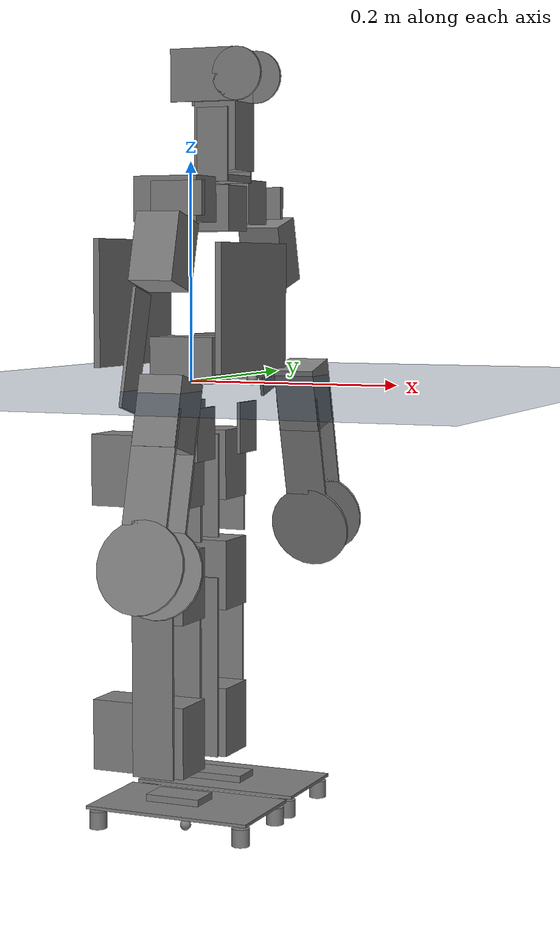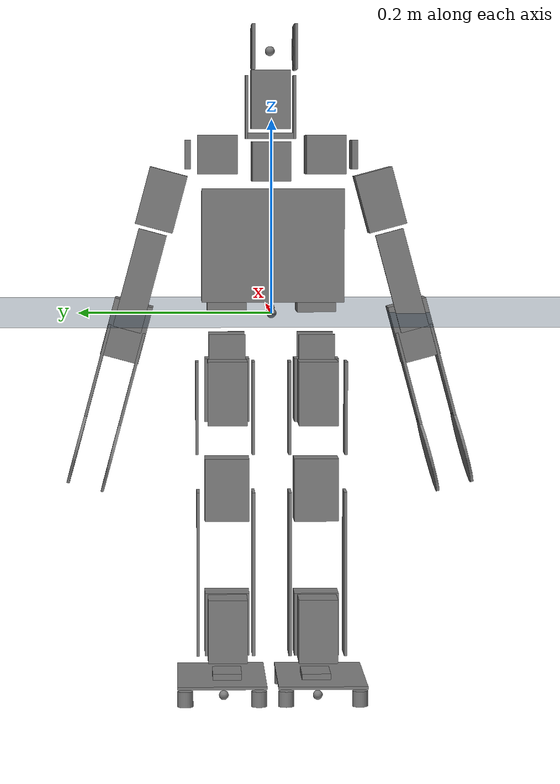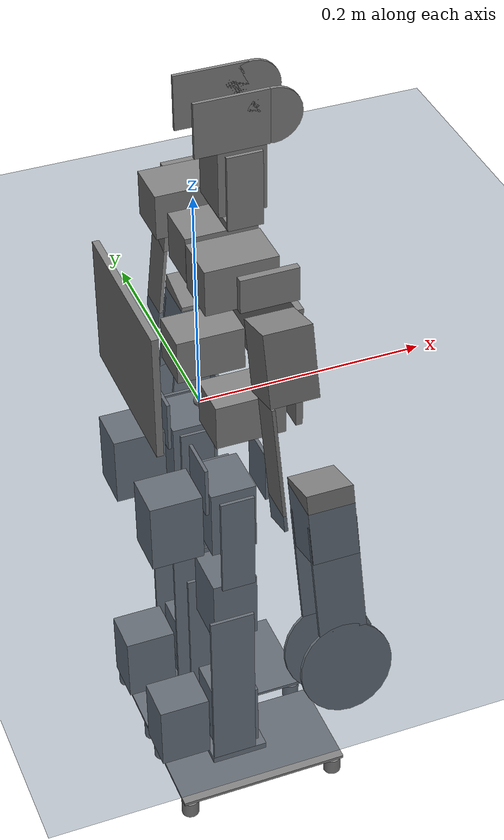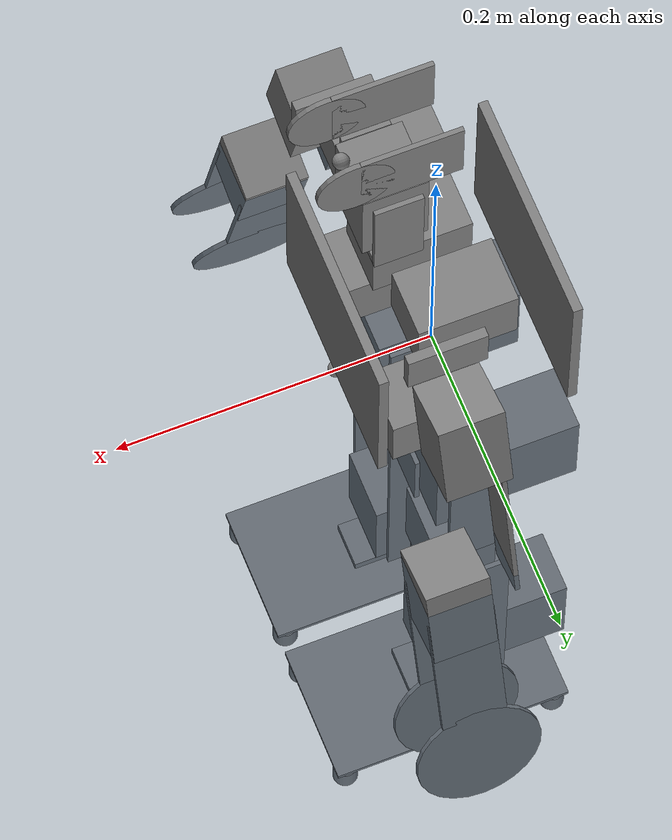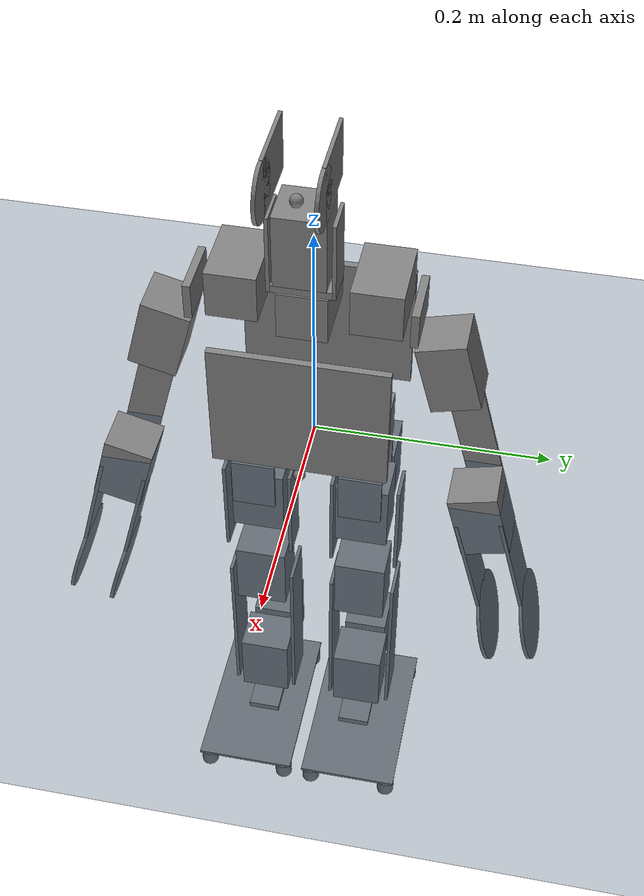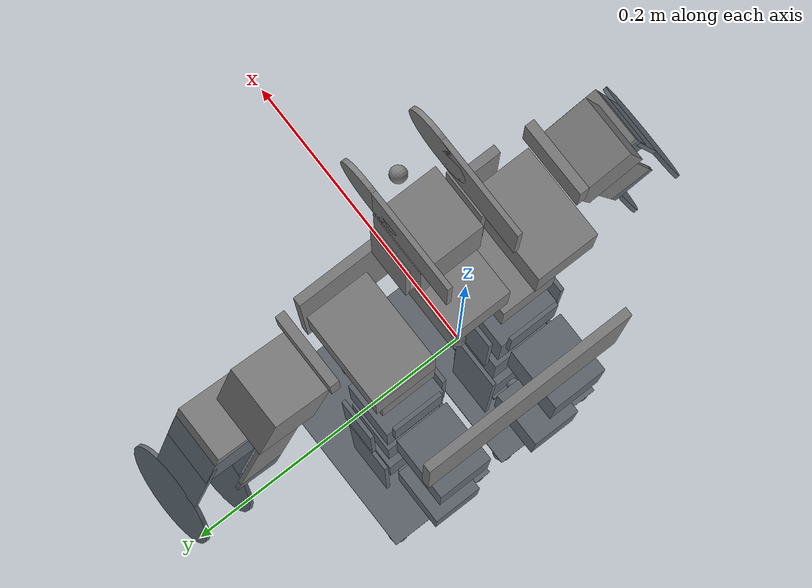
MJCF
<mujoco model="rhoban">
	<include file="sigmaban.xml"/>

	<visual>
		<headlight diffuse="0.6 0.6 0.6" ambient="0.3 0.3 0.3" specular="0 0 0"/>
		<rgba haze="0.15 0.25 0.35 1"/>
		<global azimuth="160" elevation="-20"/>
	</visual>

	<asset>
		<texture type="skybox" builtin="gradient" rgb1="0.3 0.5 0.7" rgb2="0 0 0" width="512" height="3072"/>
		<texture type="2d" name="groundplane" builtin="checker" mark="edge" rgb1="0.2 0.3 0.4" rgb2="0.1 0.2 0.3"
			markrgb="0.8 0.8 0.8" width="300" height="300"/>
		<material name="groundplane" texture="groundplane" texuniform="true" texrepeat="5 5" reflectance="0.2"/>
	</asset>

	<worldbody>
		<light pos="0 0 3.5" dir="0 0 -1" directional="true"/>
		<geom name="floor" size="0 0 0.05" pos="0 0 0" type="plane" material="groundplane"/>
	</worldbody>
</mujoco>

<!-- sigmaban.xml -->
<mujoco model="sigmaban">
    <compiler angle="radian" />

    <!-- KP=12 -->
    <default>
        <default class="mx106">
            <position kp="21" forcerange="-8 8" />
            <joint damping="1.7" armature="0.025" frictionloss="0.10" />
        </default>
        <default class="mx64">
            <position kp="12.5" forcerange="-5 5" />
            <joint damping="0.66" armature="0.012" frictionloss="0.09" />
        </default>
    </default>

    <!-- KP=18 -->

    <!-- KP=24 -->

    <!-- KP=32 (base pour la règle de 3)-->

    <option noslip_iterations="1"></option>

    <worldbody>
        <body name="torso_2023">
            <freejoint name="root" />
            <site name="torso" />
            <inertial pos="0.00156484 6.73262e-05 0.070745"
                quat="0.99676 -0.0200847 -0.0149022 0.0764468" mass="3.27516"
                diaginertia="0.0199727 0.0188364 0.0126333" />
            <geom size="0.0725 0.057796 0.003"
                pos="0.0603892 1.47174e-07 0.0680823" quat="0.5 -0.5 0.5 -0.5" type="box" />
            <geom
                size="0.0201 0.03055 0.0205" pos="0.0209392 0.0464001 0.022"
                quat="0 0.707107 -0.707107 0" type="box" />
            <geom size="0.0201 0.03055 0.0205"
                pos="0.0209392 -0.0463999 0.022" quat="0 0.707107 -0.707107 0" type="box" />
            <geom
                size="0.0201 0.03055 0.0205" pos="0.0158392 1.47174e-07 0.157"
                quat="0.707107 0 0 -0.707107" type="box" />
            <geom size="0.0725 0.057796 0.003"
                pos="-0.0596108 1.47174e-07 0.0719177" quat="0.5 0.5 0.5 0.5" type="box" />
            <geom
                size="0.0201 0.03055 0.0205" pos="0.0108392 0.0560001 0.164"
                quat="0.5 -0.5 -0.5 -0.5" type="box" />
            <geom size="0.0201 0.03055 0.0205"
                pos="0.0108392 -0.0559999 0.164" quat="0.5 0.5 0.5 -0.5" type="box" />
            <body
                name="head_base" pos="0.0333892 1.47174e-07 0.183">
                <inertial pos="0 0 0" mass="1e-09" diaginertia="0 0 0" />
            </body>
            <site name="trunk" pos="0.0608892 1.47174e-07 0.0025" />
            <body
                name="u_neck" pos="0.0333892 1.47174e-07 0.1805" quat="0.707107 0 0 -0.707107">
                <inertial pos="0 0 0.0206334" quat="0.707107 0 0 0.707107" mass="0.0544799"
                    diaginertia="5.16952e-05 3.05787e-05 2.98525e-05" />
                <joint class="mx64" name="head_yaw" pos="0 0 0" axis="0 0 1" />
                <geom size="0.015 0.032901 0.0015" pos="0.025 0 0.032901" quat="0.5 0.5 -0.5 -0.5"
                    type="box" />
                <geom size="0.015 0.032901 0.0015" pos="-0.025 0 0.032901" quat="0.5 0.5 0.5 0.5"
                    type="box" />
                <geom size="0.0245 0.015 0.003125" pos="0 0 0.003125" quat="0 1 0 0" type="box" />
                <body name="head_2023__field_of_view_false" pos="-0.0235 0 0.058302"
                    quat="0.5 0.5 -0.5 -0.5">
                    <inertial pos="-0.000139837 0.00397747 -0.0233757"
                        quat="0.713826 0.697167 -0.0325639 0.0578699" mass="0.257265"
                        diaginertia="0.000251953 0.000245992 0.000105535" />
                    <joint class="mx64" name="head_pitch" pos="0 0 0" axis="0 0 1" />
                    <geom size="0.0235 0.0015" pos="-0.0238 0.0365 -0.005" quat="0 0 1 0"
                        type="cylinder" />
                    <geom size="0.0308 0.0235 0.0015" pos="0.01 0.0365 -0.005" quat="0 0 1 0"
                        type="box" />
                    <geom size="0.0235 0.0015" pos="-0.0238 0.0365 -0.049" quat="0 0 1 0"
                        type="cylinder" />
                    <geom size="0.0308 0.0235 0.0015" pos="0.01 0.0365 -0.049" quat="0 0 1 0"
                        type="box" />
                    <geom size="0.0201 0.03055 0.0205" pos="0 -0.01755 -0.0235" type="box" />
                    <site name="camera" pos="-0.024933 0.0335 -0.0235" quat="0 0.707107 0 -0.707107" />
                </body>
            </body>
            <body
                name="u_shoulder_2023" pos="0.0283892 0.0795001 0.164" quat="0.707107 -0.707107 0 0">
                <inertial pos="0 0.00364642 0.0214003" quat="0.534183 0.463302 0.534183 0.463302"
                    mass="0.0751043" diaginertia="5.70899e-05 4.53448e-05 3.35766e-05" />
                <joint class="mx64" name="left_shoulder_pitch" pos="0 0 0" axis="0 0 1" />
                <geom size="0.0245 0.015 0.003125" pos="0 0 0.007125" quat="0 -1 0 0" type="box" />
                <body name="left_humerus" pos="0.0235 0.03 0.03"
                    quat="0.092296 -0.701057 0.092296 -0.701057">
                    <inertial pos="0.000340637 -0.0522685 -0.0268822"
                        quat="0.6755 0.737155 -0.00965607 0.0144769" mass="0.243502"
                        diaginertia="0.0007708 0.000757172 7.90289e-05" />
                    <joint class="mx64" name="left_shoulder_roll" pos="0 0 0" axis="0 0 1" />
                    <geom size="0.0201 0.03055 0.0205" pos="0 -0.01755 -0.0235" type="box" />
                    <geom size="0.0525 0.015 0.0015" pos="0 -0.1045 -0.04"
                        quat="0 0.707107 -0.707107 0" type="box" />
                    <body name="radius_v2" pos="0.0235 -0.142 -0.0025" quat="0.707107 0 0.707107 0">
                        <inertial pos="7.98171e-05 -0.0556905 -0.0234333"
                            quat="0.516125 0.5144 -0.483923 0.484589" mass="0.256846"
                            diaginertia="0.000947096 0.000937203 0.000130591" />
                        <joint class="mx64" name="left_elbow" pos="0 0 0" axis="0 0 1" />
                        <geom size="0.04 0.0015" pos="0 -0.1496 -0.042"
                            quat="0.707107 0 0 -0.707107" type="cylinder" />
                        <geom size="0.0497756 0.0206 0.0015" pos="0 -0.0649756 -0.042"
                            quat="0.707107 0 0 -0.707107" type="box" />
                        <geom size="0.0201 0.03055 0.0205" pos="0 -0.01755 -0.0235" quat="1 0 0 0"
                            type="box" />
                        <geom size="0.04 0.0015" pos="0 -0.1496 -0.005"
                            quat="0.707107 0 0 -0.707107" type="cylinder" />
                        <geom size="0.0497756 0.0206 0.0015" pos="0 -0.0649756 -0.005"
                            quat="0.707107 0 0 -0.707107" type="box" />
                    </body>
                </body>
            </body>
            <body
                name="u_shoulder_2023_2" pos="0.0283892 -0.0794999 0.164"
                quat="0 0 -0.707107 -0.707107">
                <inertial pos="0 -0.00364642 -0.0214003" quat="0.534183 0.463302 0.534183 0.463302"
                    mass="0.0751043" diaginertia="5.70899e-05 4.53448e-05 3.35766e-05" />
                <joint class="mx64" name="right_shoulder_pitch" pos="0 0 0" axis="0 0 1" />
                <geom size="0.0245 0.015 0.003125" pos="0 0 -0.007125" type="box" />
                <body name="right_humerus" pos="-0.0235 -0.03 -0.03"
                    quat="0.701057 0.092296 -0.701057 -0.092296">
                    <inertial pos="-0.000172255 -0.0522685 -0.0268669"
                        quat="0.675487 0.736848 -0.0236007 0.014685" mass="0.243502"
                        diaginertia="0.000770875 0.000757172 7.90454e-05" />
                    <joint class="mx64" name="right_shoulder_roll" pos="0 0 0" axis="0 0 1"/>
                    <geom size="0.0525 0.015 0.0015" pos="0 -0.1045 -0.04"
                        quat="0 -0.707107 0.707107 0" type="box" />
                    <geom size="0.0201 0.03055 0.0205" pos="0 -0.01755 -0.0235" type="box" />
                    <body name="radius_v2_2" pos="-0.0235 -0.142 -0.0025"
                        quat="0 -0.707107 0 -0.707107">
                        <inertial pos="7.98171e-05 0.0556905 0.0234333"
                            quat="0.484589 0.483923 -0.5144 0.516125" mass="0.256846"
                            diaginertia="0.000947096 0.000937203 0.000130591" />
                        <joint class="mx64" name="right_elbow" pos="0 0 0" axis="0 0 1" />
                        <geom size="0.04 0.0015" pos="0 0.1496 0.005" quat="0 0.707107 0.707107 0"
                            type="cylinder" />
                        <geom size="0.0497756 0.0206 0.0015" pos="0 0.0649756 0.005"
                            quat="0 0.707107 0.707107 0" type="box" />
                        <geom size="0.04 0.0015" pos="0 0.1496 0.042" quat="0 0.707107 0.707107 0"
                            type="cylinder" />
                        <geom size="0.0497756 0.0206 0.0015" pos="0 0.0649756 0.042"
                            quat="0 0.707107 0.707107 0" type="box" />
                        <geom size="0.0201 0.03055 0.0205" pos="0 0.01755 0.0235" quat="0 1 0 0"
                            type="box" />
                    </body>
                </body>
            </body>
            <body
                name="u_block_2023" pos="0.0033892 0.0464001 -0.021" quat="0 0 0 -1">
                <inertial pos="-0.00509532 -8.44195e-07 -0.00985131"
                    quat="0.531959 0.465906 0.466024 0.531765" mass="0.0630136"
                    diaginertia="4.24266e-05 3.5526e-05 2.00009e-05" />
                <joint class="mx64" name="left_hip_yaw" pos="0 0 0" axis="0 0 1" />
                <geom size="0.01875 0.02375 0.0015" pos="-0.03144 0 -0.02375" quat="0.5 0.5 0.5 0.5"
                    type="box" />
                <geom size="0.01875 0.02375 0.0015" pos="0.0219 0 -0.02375" quat="0.5 -0.5 0.5 -0.5"
                    type="box" />
                <body name="mx106_block_hip__list_0bj1pweadmbeeq_hip" pos="0.0234 0 -0.04"
                    quat="0.5 0.5 -0.5 -0.5">
                    <inertial pos="-0.000525167 -0.0153964 0.00382779"
                        quat="0.996695 -0.0796662 -0.00761504 0.0139099" mass="0.397097"
                        diaginertia="0.000428697 0.000375755 0.000176713" />
                    <joint class="mx106" name="left_hip_roll" pos="0 0 0" axis="0 0 1" />
                    <geom size="0.0201 0.03255 0.023" pos="0 -0.01805 -0.026" type="box" />
                    <geom size="0.0201 0.03255 0.023" pos="0 -0.01805 0.0234"
                        quat="0.707107 0 0.707107 0" type="box" />
                    <body name="left_knee_2023" pos="0.0295 0 0.0234" quat="0 0.707107 0 0.707107">
                        <inertial pos="-3.04946e-05 0.100616 -0.0296228"
                            quat="0.722599 0.691267 -0.000117213 -0.000114115" mass="0.268473"
                            diaginertia="0.000539256 0.000462483 0.000122223" />
                        <joint class="mx106" name="left_hip_pitch" pos="0 0 0" axis="0 0 1" />
                        <geom size="0.0201 0.03255 0.023" pos="0 0.12195 -0.0295" quat="1 0 0 0"
                            type="box" />
                        <geom size="0.015 0.04825 0.0015" pos="0 0.03725 -0.057" quat="0 1 0 0"
                            type="box" />
                        <geom size="0.015 0.04825 0.0015" pos="0 0.03725 0.0015" type="box" />
                        <body name="tibia_2023" pos="0 0.14 -0.001" quat="1 0 0 0">
                            <inertial pos="-0.00296199 0.0631405 -0.0268398"
                                quat="0.706918 0.707174 -0.00934954 -0.00915237" mass="0.113077"
                                diaginertia="0.000351979 0.00027164 0.000103748" />
                            <joint class="mx106" name="left_knee" pos="0 0 0" axis="0 0 1" />
                            <geom size="0.0202131 0.0850495 0.0015" pos="-0.0062131 0.068951 0.0015"
                                quat="0 0 -1 0" type="box" />
                            <geom size="0.0202131 0.0850495 0.0015"
                                pos="-0.0062131 0.068951 -0.05594" quat="0 0 -1 0" type="box" />
                            <body name="mx106_block_mir_ankle" pos="0 0.14 0" quat="0 0 0 1">
                                <inertial pos="0.0195695 0.0153964 -0.0290274"
                                    quat="-0.0662501 0.699432 0.0464073 0.710107" mass="0.397097"
                                    diaginertia="0.000428738 0.000375795 0.000176713" />
                                <joint class="mx106" name="left_ankle_pitch" pos="0 0 0" axis="0 0 1" />
                                <geom size="0.0201 0.03255 0.023" pos="0 0.01805 -0.0285"
                                    quat="0 0 0 1" type="box" />
                                <geom size="0.0201 0.03255 0.023" pos="0.0494 0.01805 -0.0285"
                                    quat="0 -0.707107 0 0.707107" type="box" />
                                <body name="left_foot___list_t0v6opd9rekumc_default"
                                    pos="0.0234 0 -0.0285" quat="0.707107 0 -0.707107 0">
                                    <inertial pos="0.00454445 -0.0365542 0.0466461"
                                        quat="0.711591 -0.00419889 0.011253 0.702491"
                                        mass="0.281856"
                                        diaginertia="0.000922792 0.000718237 0.000264953" />
                                    <joint class="mx106" name="left_ankle_roll" pos="0 0 0" axis="0 0 1" />
                                    <geom size="0.02617 0.015 0.003125" pos="0 -0.036875 0.02817"
                                        quat="0.5 0.5 0.5 -0.5" type="box" />
                                    <geom size="0.046 0.0788 0.0015" pos="0.0055 -0.0415 0.03867"
                                        quat="0.707107 -0.707107 0 0" type="box" />

                                    <body name="left_foot_cleat_back_left">
                                        <site name="left_foot_cleat_back_left"
                                            quat="0.5 -0.5 -0.5 -0.5" />
                                        <geom size="0.008 0.008" pos="0.0435 -0.0535 -0.03213"
                                            quat="0.707107 0.707107 0 0" type="cylinder" />
                                    </body>

                                    <body name="left_foot_cleat_back_right">
                                        <site name="left_foot_cleat_back_right"
                                            quat="0.5 -0.5 -0.5 -0.5" />
                                        <geom size="0.008 0.008" pos="-0.0325 -0.0535 -0.03213"
                                            quat="0.707107 0.707107 0 0" type="cylinder" />
                                    </body>

                                    <body name="left_foot_cleat_front_left">
                                        <site name="left_foot_cleat_front_left"
                                            quat="0.5 -0.5 -0.5 -0.5" />
                                        <geom size="0.008 0.008" pos="0.0435 -0.0535 0.10947"
                                            quat="0 0 -0.707107 0.707107" type="cylinder" />
                                    </body>

                                    <body name="left_foot_cleat_front_right">
                                        <site name="left_foot_cleat_front_right"
                                            quat="0.5 -0.5 -0.5 -0.5" />
                                        <geom size="0.008 0.008" pos="-0.0325 -0.0535 0.10947"
                                            quat="0 0 -0.707107 0.707107" type="cylinder" />
                                    </body>

                                    <site name="left_foot" pos="0.003 -0.0615 0.03617"
                                        quat="0.5 -0.5 -0.5 -0.5" />

                                    <body name="left_ps_0" pos="-0.0325 -0.0615 0.10947"
                                        quat="0.5 -0.5 -0.5 -0.5">
                                        <inertial pos="0 0 0" mass="1e-09" diaginertia="0 0 0" />
                                    </body>
                                    <body name="left_ps_1" pos="-0.0325 -0.0615 -0.03213"
                                        quat="0.5 -0.5 -0.5 -0.5">
                                        <inertial pos="0 0 0" mass="1e-09" diaginertia="0 0 0" />
                                    </body>
                                    <body name="left_ps_2" pos="0.0435 -0.0615 -0.03213"
                                        quat="0.5 -0.5 -0.5 -0.5">
                                        <inertial pos="0 0 0" mass="1e-09" diaginertia="0 0 0" />
                                    </body>
                                    <body name="left_ps_3" pos="0.0435 -0.0615 0.10947"
                                        quat="0.5 -0.5 -0.5 -0.5">
                                        <inertial pos="0 0 0" mass="1e-09" diaginertia="0 0 0" />
                                    </body>
                                </body>
                            </body>
                        </body>
                    </body>
                </body>
            </body>
            <body
                name="u_block_2023_2" pos="0.0033892 -0.0463999 -0.021" quat="0 0 0 -1">
                <inertial pos="-0.00509532 -8.44195e-07 -0.00985131"
                    quat="0.531959 0.465906 0.466024 0.531765" mass="0.0630136"
                    diaginertia="4.24266e-05 3.5526e-05 2.00009e-05" />
                <joint class="mx64" name="right_hip_yaw" pos="0 0 0" axis="0 0 1" />
                <geom size="0.01875 0.02375 0.0015" pos="-0.03144 0 -0.02375" quat="0.5 0.5 0.5 0.5"
                    type="box" />
                <geom size="0.01875 0.02375 0.0015" pos="0.0219 0 -0.02375" quat="0.5 -0.5 0.5 -0.5"
                    type="box" />
                <body name="mx106_block_mir_hip__list_mr67plvazplf9a_hip" pos="0.0234 0 -0.04"
                    quat="0.5 0.5 -0.5 -0.5">
                    <inertial pos="0.000527445 -0.0153964 0.00383064"
                        quat="0.996695 -0.0796624 0.0075433 -0.0140338" mass="0.397097"
                        diaginertia="0.000428741 0.000375798 0.000176713" />
                    <joint class="mx106" name="right_hip_roll" pos="0 0 0" axis="0 0 1" />
                    <geom size="0.0201 0.03255 0.023" pos="0 -0.01805 -0.026" type="box" />
                    <geom size="0.0201 0.03255 0.023" pos="0 -0.01805 0.0234"
                        quat="0.707107 0 -0.707107 0" type="box" />
                    <body name="right_knee_2023" pos="-0.0295 0 0.0234" quat="0.707107 0 0.707107 0">
                        <inertial pos="-3.04946e-05 -0.100616 0.0296089"
                            quat="0.722631 0.691234 0.000116647 0.000114696" mass="0.268473"
                            diaginertia="0.000539257 0.000462486 0.000122221" />
                        <joint class="mx106" name="right_hip_pitch" pos="0 0 0" axis="0 0 1" />
                        <geom size="0.015 0.04825 0.0015" pos="0 -0.03725 -0.0015" quat="0 1 0 0"
                            type="box" />
                        <geom size="0.015 0.04825 0.0015" pos="0 -0.03725 0.057" quat="1 0 0 0"
                            type="box" />
                        <geom size="0.0201 0.03255 0.023" pos="0 -0.12195 0.0295" quat="0 -1 0 0"
                            type="box" />
                        <body name="tibia_2023_2" pos="0 -0.14 0.001" quat="0 0 0 -1">
                            <inertial pos="-0.00296199 0.0631406 0.0268398"
                                quat="0.707175 0.706918 -0.00915244 -0.00934946" mass="0.113077"
                                diaginertia="0.000351979 0.00027164 0.000103748" />
                            <joint class="mx106" name="right_knee" pos="0 0 0" axis="0 0 1" />
                            <geom size="0.0202131 0.0850495 0.0015"
                                pos="-0.0062131 0.068951 0.05594" quat="0 0 1 0" type="box" />
                            <geom size="0.0202131 0.0850495 0.0015"
                                pos="-0.0062131 0.068951 -0.0015" quat="0 0 -1 0" type="box" />
                            <body name="mx106_block_ankle__list_0bj1pweadmbeeq_default"
                                pos="0 0.14 0" quat="1 0 0 0">
                                <inertial pos="-0.0195724 -0.0153964 0.0290252"
                                    quat="-0.0661652 0.699382 0.0464976 0.710158" mass="0.397097"
                                    diaginertia="0.000428694 0.000375752 0.000176714" />
                                <joint class="mx106" name="right_ankle_pitch" pos="0 0 0" axis="0 0 1" />
                                <geom size="0.0201 0.03255 0.023" pos="0 -0.01805 0.0285"
                                    quat="0 0 -1 0" type="box" />
                                <geom size="0.0201 0.03255 0.023" pos="-0.0494 -0.01805 0.0285"
                                    quat="0.707107 0 0.707107 0" type="box" />
                                <body name="right_foot_" pos="-0.0234 0 0.0285"
                                    quat="0 -0.707107 0 -0.707107">
                                    <inertial pos="-0.00454439 -0.0365542 0.0466461"
                                        quat="0.702491 -0.0112532 0.00419872 0.711591"
                                        mass="0.281856"
                                        diaginertia="0.000922792 0.000718237 0.000264953" />
                                    <joint class="mx106" name="right_ankle_roll" pos="0 0 0" axis="0 0 1" />
                                    <geom size="0.02617 0.015 0.003125" pos="0 -0.036875 0.02817"
                                        quat="0.5 0.5 0.5 -0.5" type="box" />
                                    <geom size="0.046 0.0788 0.0015" pos="-0.0055 -0.0415 0.03867"
                                        quat="0.707107 -0.707107 0 0" type="box" />

                                    <body name="right_foot_cleat_back_right">
                                        <site name="right_foot_cleat_back_right"
                                            quat="0.5 -0.5 -0.5 -0.5" />
                                        <geom size="0.008 0.008" pos="-0.0435 -0.0535 -0.03213"
                                            quat="0.707107 0.707107 0 0" type="cylinder" />
                                    </body>
                                    <body name="right_foot_cleat_back_left">
                                        <site name="right_foot_cleat_back_left"
                                            quat="0.5 -0.5 -0.5 -0.5" />
                                        <geom size="0.008 0.008" pos="0.0325 -0.0535 -0.03213"
                                            quat="0.707107 0.707107 0 0" type="cylinder" />
                                    </body>
                                    <body name="right_foot_cleat_front_right">
                                        <site name="right_foot_cleat_front_right"
                                            quat="0.5 -0.5 -0.5 -0.5" />
                                        <geom size="0.008 0.008" pos="-0.0435 -0.0535 0.10947"
                                            quat="0 0 -0.707107 0.707107" type="cylinder" />
                                    </body>
                                    <body name="right_foot_cleat_front_left">
                                        <site name="right_foot_cleat_front_left"
                                            quat="0.5 -0.5 -0.5 -0.5" />

                                        <geom size="0.008 0.008" pos="0.0325 -0.0535 0.10947"
                                            quat="0 0 -0.707107 0.707107" type="cylinder" />
                                    </body>

                                    <site name="right_foot" pos="-0.003 -0.0615 0.03617"
                                        quat="0.5 -0.5 -0.5 -0.5" />

                                    <body name="right_ps_0" pos="-0.0435 -0.0615 0.10947"
                                        quat="0.5 -0.5 -0.5 -0.5">
                                        <inertial pos="0 0 0" mass="1e-09" diaginertia="0 0 0" />
                                    </body>
                                    <body name="right_ps_1" pos="-0.0435 -0.0615 -0.03213"
                                        quat="0.5 -0.5 -0.5 -0.5">
                                        <inertial pos="0 0 0" mass="1e-09" diaginertia="0 0 0" />
                                    </body>
                                    <body name="right_ps_2" pos="0.0325 -0.0615 -0.03213"
                                        quat="0.5 -0.5 -0.5 -0.5">
                                        <inertial pos="0 0 0" mass="1e-09" diaginertia="0 0 0" />
                                    </body>
                                    <body name="right_ps_3" pos="0.0325 -0.0615 0.10947"
                                        quat="0.5 -0.5 -0.5 -0.5">
                                        <inertial pos="0 0 0" mass="1e-09" diaginertia="0 0 0" />
                                    </body>
                                </body>
                            </body>
                        </body>
                    </body>
                </body>
            </body>
        </body>
    </worldbody>

    <sensor>
        <gyro site="torso" name="gyro" />
                <accelerometer site="torso" name="accelerometer" />

        <force site="left_foot_cleat_front_right" name="left_foot_cleat_front_right" />
        <force site="left_foot_cleat_front_left" name="left_foot_cleat_front_left" />
        <force site="left_foot_cleat_back_right" name="left_foot_cleat_back_right" />
        <force site="left_foot_cleat_back_left" name="left_foot_cleat_back_left" />
        <force site="right_foot_cleat_front_right" name="right_foot_cleat_front_right" />
        <force site="right_foot_cleat_front_left" name="right_foot_cleat_front_left" />
        <force site="right_foot_cleat_back_right" name="right_foot_cleat_back_right" />
        <force site="right_foot_cleat_back_left" name="right_foot_cleat_back_left" />
    </sensor>

    <actuator>
        <position class="mx106" name="left_hip_roll" joint="left_hip_roll" ctrlrange="-0.523599 0.610865" />
        <position class="mx106" name="left_hip_pitch" joint="left_hip_pitch" ctrlrange="-1.5708 0.67" />
        <position class="mx106" name="left_knee" joint="left_knee" ctrlrange="0 2.2689280" />
        <position class="mx106" name="left_ankle_pitch" joint="left_ankle_pitch" ctrlrange="-1.308996 1.308996" />
        <position class="mx106" name="left_ankle_roll" joint="left_ankle_roll" ctrlrange="-0.785398 0.785398" />
        <position class="mx106" name="right_hip_roll" joint="right_hip_roll" ctrlrange="-0.610865 0.523599" />
        <position class="mx106" name="right_hip_pitch" joint="right_hip_pitch" ctrlrange="-1.5708 0.67" />
        <position class="mx106" name="right_knee" joint="right_knee" ctrlrange="0 2.2689280" />
        <position class="mx106" name="right_ankle_pitch" joint="right_ankle_pitch" ctrlrange="-1.308996 1.308996" />
        <position class="mx106" name="right_ankle_roll" joint="right_ankle_roll" ctrlrange="-0.785398 0.785398" />

        <position class="mx64" name="head_yaw" joint="head_yaw" ctrlrange="-2.0944 2.0944" />
        <position class="mx64" name="head_pitch" joint="head_pitch" ctrlrange="-0.785398 1.5708" />
        <position class="mx64" name="left_hip_yaw" joint="left_hip_yaw" ctrlrange="-1.0472 1.0472" />
        <position class="mx64" name="right_hip_yaw" joint="right_hip_yaw" ctrlrange="-1.0472 1.0472" />
        <position class="mx64" name="left_shoulder_pitch" joint="left_shoulder_pitch" ctrlrange="-2.18166 2.18166" />
        <position class="mx64" name="left_elbow" joint="left_elbow" ctrlrange="-2.79253 0.261799" />
        <position class="mx64" name="right_shoulder_pitch" joint="right_shoulder_pitch" ctrlrange="-2.18166 2.18166" />
        <position class="mx64" name="right_elbow" joint="right_elbow" ctrlrange="-2.79253 0.261799" />

        <position class="mx64" name="left_shoulder_roll" joint="left_shoulder_roll" ctrlrange="-0.261799 1.309" />
        <position class="mx64" name="right_shoulder_roll" joint="right_shoulder_roll" ctrlrange="-1.309 0.261799" />
    </actuator>
</mujoco>
